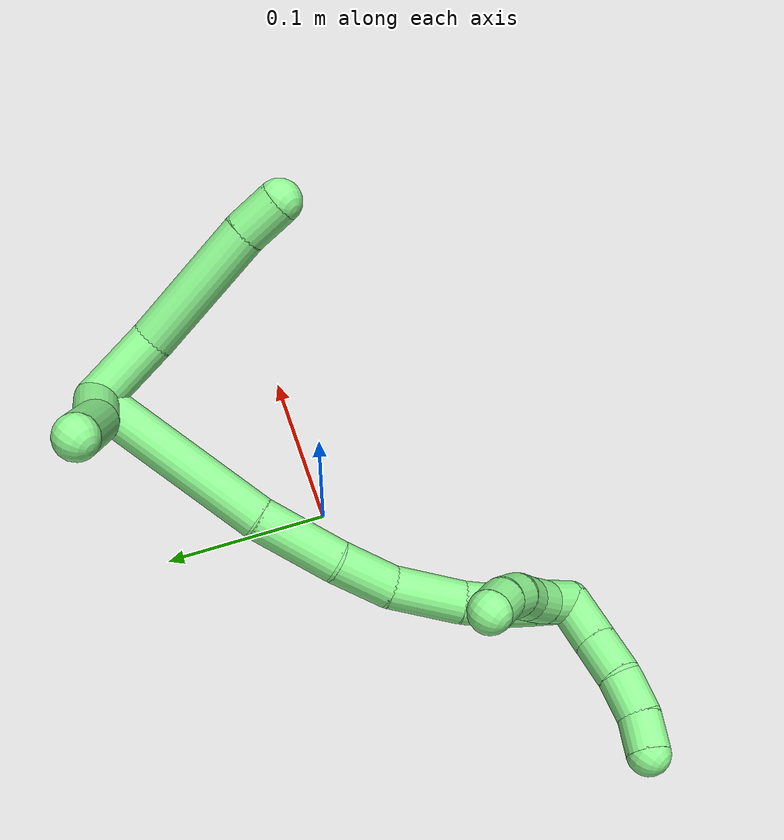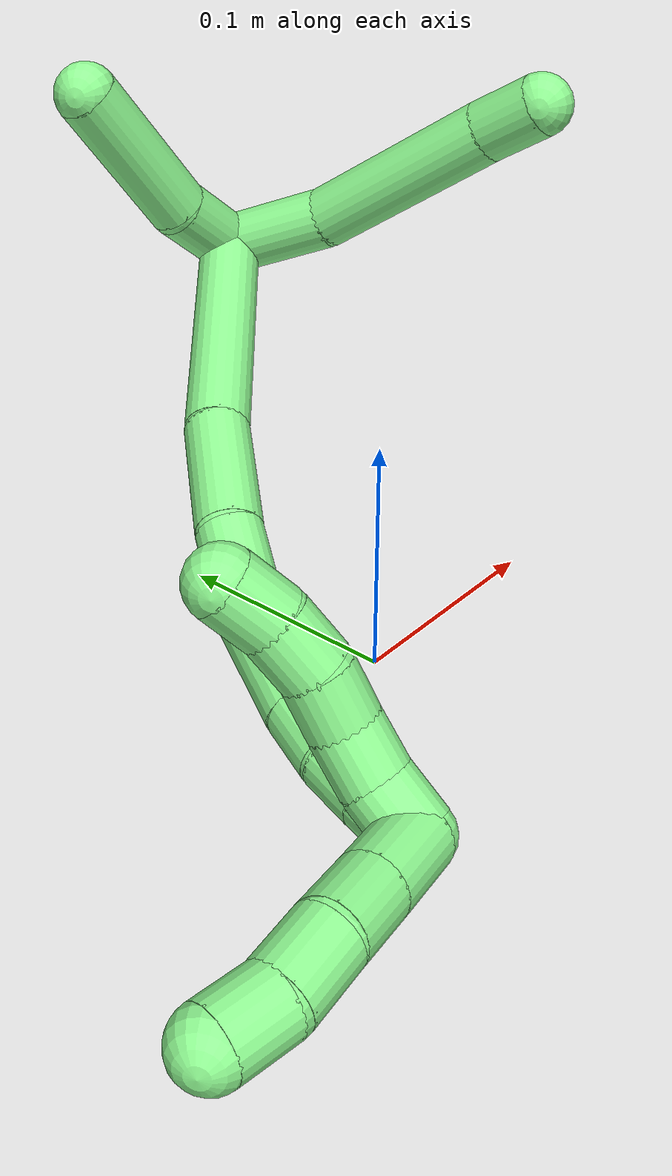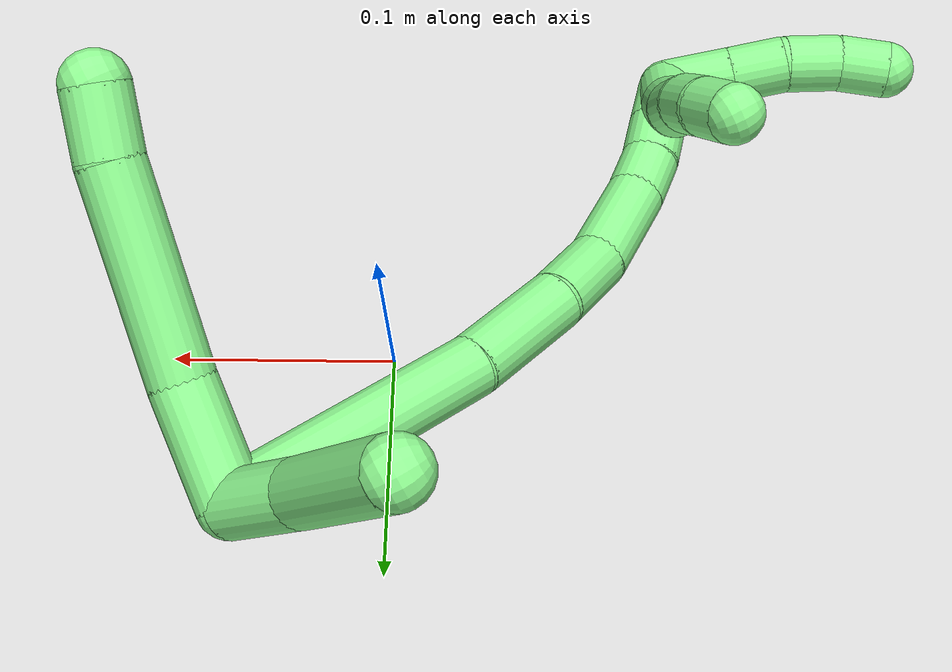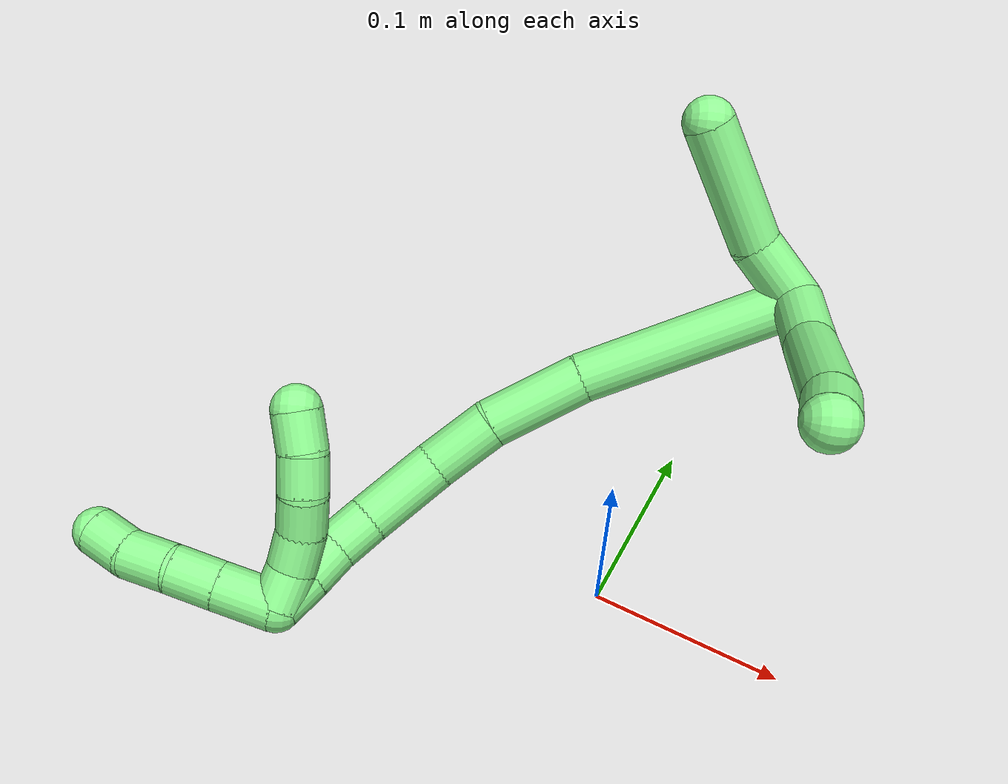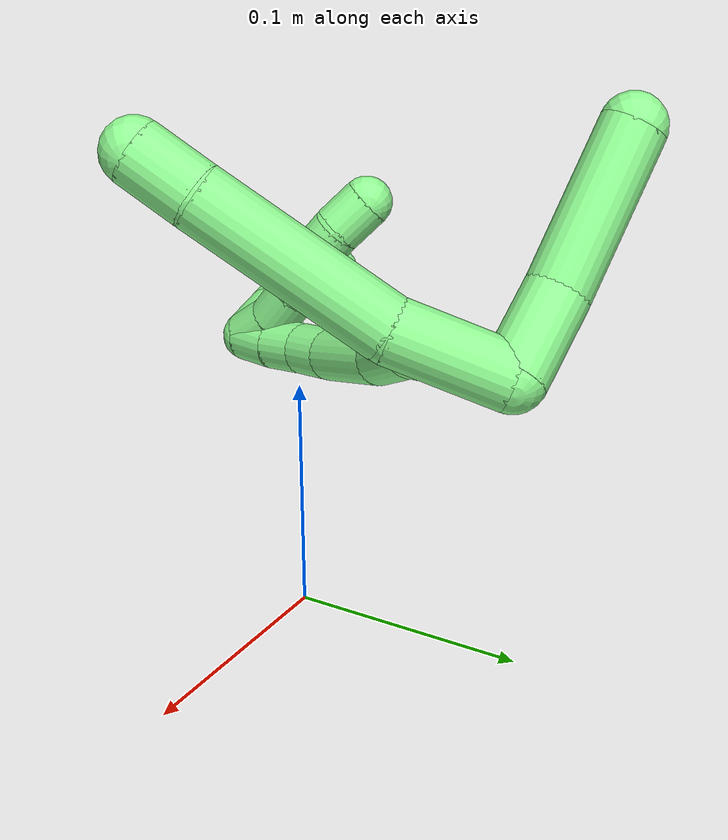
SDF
<sdf version="1.7">
 <world name="default">
  <model name="photoneo_s_sensor">
   <static>1</static>
   <pose>0 0 2 1.57079 1.57079 3.14159</pose>
   <link name="link">
    <inertial><mass>0.1</mass></inertial>
    <sensor name="sensor" type="depth">
     <update_rate>30</update_rate>
     <camera>
      <horizontal_fov>1.22</horizontal_fov>
      <image><width>1920</width><height>1200</height><format>B8G8R8</format></image>
      <clip><near>0.1</near><far>4</far></clip>
      <depth_camera><output>points</output></depth_camera>
     </camera>
     <plugin name="camera_plugin" filename="libgazebo_ros_depth_camera.so">
      <baseline>0.2</baseline>
      <alwaysOn>1</alwaysOn>
      <updateRate>0.0</updateRate>
      <cameraName>camera_ir</cameraName>
      <imageTopicName>/camera/color/image_raw</imageTopicName>
      <cameraInfoTopicName>/camera/color/camera_info</cameraInfoTopicName>
      <depthImageTopicName>/camera/depth/image_raw</depthImageTopicName>
      <depthImageCameraInfoTopicName>/camera/depth/camera_info</depthImageCameraInfoTopicName>
      <pointCloudTopicName>/camera/depth/points</pointCloudTopicName>
      <frameName>fr_optical</frameName>
      <pointCloudCutoff>0.1</pointCloudCutoff>
      <pointCloudCutoffMax>2.0</pointCloudCutoffMax>
      <distortionK1>0</distortionK1>
      <distortionK2>0</distortionK2>
      <distortionK3>0</distortionK3>
      <distortionT1>0</distortionT1>
      <distortionT2>0</distortionT2>
      <CxPrime>0</CxPrime>
      <Cx>0</Cx>
      <Cy>0</Cy>
      <focalLength>0</focalLength>
      <hackBaseline>0</hackBaseline>
     </plugin>
    </sensor>
   </link>
  </model>
  <model name="bin">
   <static>1</static>
   <link name="bottom">
    <collision name="collision-bottom">
     <pose>0 0 -0.01 0 -0 0</pose>
     <geometry><box><size>0.8 0.6 0.02</size></box></geometry>
     <surface>
      <friction><ode><mu>100</mu><mu2>100</mu2></ode></friction>
      <contact><collide_bitmask>65535</collide_bitmask></contact>
     </surface>
    </collision>
   </link>
   <link name="west_wall">
    <collision name="collision-west_wall">
     <pose>-0.41 0 0.1 0 -0 0</pose>
     <geometry><box><size>0.02 0.6 0.2</size></box></geometry>
     <surface>
      <friction><ode><mu>100</mu><mu2>100</mu2></ode></friction>
      <contact><collide_bitmask>65535</collide_bitmask></contact>
     </surface>
    </collision>
   </link>
   <link name="east_wall">
    <collision name="collision-east_wall">
     <pose>0.41 0 0.1 0 -0 0</pose>
     <geometry><box><size>0.02 0.6 0.2</size></box></geometry>
     <surface>
      <friction><ode><mu>100</mu><mu2>100</mu2></ode></friction>
      <contact><collide_bitmask>65535</collide_bitmask></contact>
     </surface>
    </collision>
   </link>
   <link name="south_wall">
    <collision name="collision-south_wall">
     <pose>0 -0.31 0.1 0 -0 0</pose>
     <geometry><box><size>0.8 0.02 0.2</size></box></geometry>
     <surface>
      <friction><ode><mu>100</mu><mu2>100</mu2></ode></friction>
      <contact><collide_bitmask>65535</collide_bitmask></contact>
     </surface>
    </collision>
   </link>
   <link name="north_wall">
    <collision name="collision-north_wall">
     <pose>0 0.31 0.1 0 -0 0</pose>
     <geometry><box><size>0.8 0.02 0.2</size></box></geometry>
     <surface>
      <friction><ode><mu>100</mu><mu2>100</mu2></ode></friction>
      <contact><collide_bitmask>65535</collide_bitmask></contact>
     </surface>
    </collision>
   </link>
  </model>
  <model name="13">
   <static>0</static>
   <link name="13">
    <collision name="collision-cylinder-e_1_2_8">
     <pose>0.016936 -0.014913 0.002444 1.40838 0.842269 0.727181</pose>
     <geometry><cylinder><radius>0.0125</radius><length>0.045395</length></cylinder></geometry>
     <surface>
      <friction><ode><mu>1.16</mu><mu2>1.16</mu2><slip1>0</slip1><slip2>0</slip2></ode></friction>
      <contact><ode><kp>1e+06</kp><kd>1</kd><max_vel>0</max_vel><min_depth>0.001</min_depth></ode></contact>
     </surface>
    </collision>
    <visual name="visual-cylinder-e_1_2_8">
     <pose>0.016936 -0.014913 0.002444 1.40838 0.842269 0.727181</pose>
     <geometry><cylinder><radius>0.0125</radius><length>0.045395</length></cylinder></geometry>
     <material><ambient>0.564706 0.984314 0.572549 1</ambient></material>
    </visual>
    <collision name="collision-cylinder-e_2_8_9">
     <pose>0.067708 -0.048656 0.012696 1.17769 1.02856 0.721659</pose>
     <geometry><cylinder><radius>0.0125</radius><length>0.079005</length></cylinder></geometry>
     <surface>
      <friction><ode><mu>1.16</mu><mu2>1.16</mu2><slip1>0</slip1><slip2>0</slip2></ode></friction>
      <contact><ode><kp>1e+06</kp><kd>1</kd><max_vel>0</max_vel><min_depth>0.001</min_depth></ode></contact>
     </surface>
    </collision>
    <visual name="visual-cylinder-e_2_8_9">
     <pose>0.067708 -0.048656 0.012696 1.17769 1.02856 0.721659</pose>
     <geometry><cylinder><radius>0.0125</radius><length>0.079005</length></cylinder></geometry>
     <material><ambient>0.564706 0.984314 0.572549 1</ambient></material>
    </visual>
    <collision name="collision-cylinder-e_3_9_6">
     <pose>0.111951 -0.073788 0.024482 1.00781 0.949381 0.552218</pose>
     <geometry><cylinder><radius>0.0125</radius><length>0.0256</length></cylinder></geometry>
     <surface>
      <friction><ode><mu>1.16</mu><mu2>1.16</mu2><slip1>0</slip1><slip2>0</slip2></ode></friction>
      <contact><ode><kp>1e+06</kp><kd>1</kd><max_vel>0</max_vel><min_depth>0.001</min_depth></ode></contact>
     </surface>
    </collision>
    <visual name="visual-cylinder-e_3_9_6">
     <pose>0.111951 -0.073788 0.024482 1.00781 0.949381 0.552218</pose>
     <geometry><cylinder><radius>0.0125</radius><length>0.0256</length></cylinder></geometry>
     <material><ambient>0.564706 0.984314 0.572549 1</ambient></material>
    </visual>
    <collision name="collision-cylinder-e_1_2_10">
     <pose>0.005107 0.011577 0.012735 -0.737807 0.288449 -0.112177</pose>
     <geometry><cylinder><radius>0.0125</radius><length>0.035905</length></cylinder></geometry>
     <surface>
      <friction><ode><mu>1.16</mu><mu2>1.16</mu2><slip1>0</slip1><slip2>0</slip2></ode></friction>
      <contact><ode><kp>1e+06</kp><kd>1</kd><max_vel>0</max_vel><min_depth>0.001</min_depth></ode></contact>
     </surface>
    </collision>
    <visual name="visual-cylinder-e_1_2_10">
     <pose>0.005107 0.011577 0.012735 -0.737807 0.288449 -0.112177</pose>
     <geometry><cylinder><radius>0.0125</radius><length>0.035905</length></cylinder></geometry>
     <material><ambient>0.564706 0.984314 0.572549 1</ambient></material>
    </visual>
    <collision name="collision-cylinder-e_2_10_5">
     <pose>0.025207 0.04594 0.042294 -0.934785 0.486839 -0.249373</pose>
     <geometry><cylinder><radius>0.0125</radius><length>0.064095</length></cylinder></geometry>
     <surface>
      <friction><ode><mu>1.16</mu><mu2>1.16</mu2><slip1>0</slip1><slip2>0</slip2></ode></friction>
      <contact><ode><kp>1e+06</kp><kd>1</kd><max_vel>0</max_vel><min_depth>0.001</min_depth></ode></contact>
     </surface>
    </collision>
    <visual name="visual-cylinder-e_2_10_5">
     <pose>0.025207 0.04594 0.042294 -0.934785 0.486839 -0.249373</pose>
     <geometry><cylinder><radius>0.0125</radius><length>0.064095</length></cylinder></geometry>
     <material><ambient>0.564706 0.984314 0.572549 1</ambient></material>
    </visual>
    <collision name="collision-cylinder-e_1_2_11">
     <pose>-0.016143 -0.020857 0.048459 0.406443 -0.296946 -0.061625</pose>
     <geometry><cylinder><radius>0.0125</radius><length>0.110343</length></cylinder></geometry>
     <surface>
      <friction><ode><mu>1.16</mu><mu2>1.16</mu2><slip1>0</slip1><slip2>0</slip2></ode></friction>
      <contact><ode><kp>1e+06</kp><kd>1</kd><max_vel>0</max_vel><min_depth>0.001</min_depth></ode></contact>
     </surface>
    </collision>
    <visual name="visual-cylinder-e_1_2_11">
     <pose>-0.016143 -0.020857 0.048459 0.406443 -0.296946 -0.061625</pose>
     <geometry><cylinder><radius>0.0125</radius><length>0.110343</length></cylinder></geometry>
     <material><ambient>0.564706 0.984314 0.572549 1</ambient></material>
    </visual>
    <collision name="collision-cylinder-e_2_11_12">
     <pose>-0.038218 -0.054145 0.117736 0.538296 -0.239921 -0.066475</pose>
     <geometry><cylinder><radius>0.0125</radius><length>0.049925</length></cylinder></geometry>
     <surface>
      <friction><ode><mu>1.16</mu><mu2>1.16</mu2><slip1>0</slip1><slip2>0</slip2></ode></friction>
      <contact><ode><kp>1e+06</kp><kd>1</kd><max_vel>0</max_vel><min_depth>0.001</min_depth></ode></contact>
     </surface>
    </collision>
    <visual name="visual-cylinder-e_2_11_12">
     <pose>-0.038218 -0.054145 0.117736 0.538296 -0.239921 -0.066475</pose>
     <geometry><cylinder><radius>0.0125</radius><length>0.049925</length></cylinder></geometry>
     <material><ambient>0.564706 0.984314 0.572549 1</ambient></material>
    </visual>
    <collision name="collision-cylinder-e_3_12_13">
     <pose>-0.049162 -0.077542 0.151052 0.720218 -0.292805 -0.11093</pose>
     <geometry><cylinder><radius>0.0125</radius><length>0.034731</length></cylinder></geometry>
     <surface>
      <friction><ode><mu>1.16</mu><mu2>1.16</mu2><slip1>0</slip1><slip2>0</slip2></ode></friction>
      <contact><ode><kp>1e+06</kp><kd>1</kd><max_vel>0</max_vel><min_depth>0.001</min_depth></ode></contact>
     </surface>
    </collision>
    <visual name="visual-cylinder-e_3_12_13">
     <pose>-0.049162 -0.077542 0.151052 0.720218 -0.292805 -0.11093</pose>
     <geometry><cylinder><radius>0.0125</radius><length>0.034731</length></cylinder></geometry>
     <material><ambient>0.564706 0.984314 0.572549 1</ambient></material>
    </visual>
    <collision name="collision-cylinder-e_4_13_14">
     <pose>-0.055388 -0.103323 0.178904 0.767509 -0.056793 -0.022937</pose>
     <geometry><cylinder><radius>0.0125</radius><length>0.042742</length></cylinder></geometry>
     <surface>
      <friction><ode><mu>1.16</mu><mu2>1.16</mu2><slip1>0</slip1><slip2>0</slip2></ode></friction>
      <contact><ode><kp>1e+06</kp><kd>1</kd><max_vel>0</max_vel><min_depth>0.001</min_depth></ode></contact>
     </surface>
    </collision>
    <visual name="visual-cylinder-e_4_13_14">
     <pose>-0.055388 -0.103323 0.178904 0.767509 -0.056793 -0.022937</pose>
     <geometry><cylinder><radius>0.0125</radius><length>0.042742</length></cylinder></geometry>
     <material><ambient>0.564706 0.984314 0.572549 1</ambient></material>
    </visual>
    <collision name="collision-cylinder-e_5_14_15">
     <pose>-0.055796 -0.125756 0.201806 0.790117 0.074923 0.031253</pose>
     <geometry><cylinder><radius>0.0125</radius><length>0.021507</length></cylinder></geometry>
     <surface>
      <friction><ode><mu>1.16</mu><mu2>1.16</mu2><slip1>0</slip1><slip2>0</slip2></ode></friction>
      <contact><ode><kp>1e+06</kp><kd>1</kd><max_vel>0</max_vel><min_depth>0.001</min_depth></ode></contact>
     </surface>
    </collision>
    <visual name="visual-cylinder-e_5_14_15">
     <pose>-0.055796 -0.125756 0.201806 0.790117 0.074923 0.031253</pose>
     <geometry><cylinder><radius>0.0125</radius><length>0.021507</length></cylinder></geometry>
     <material><ambient>0.564706 0.984314 0.572549 1</ambient></material>
    </visual>
    <collision name="collision-cylinder-e_6_15_16">
     <pose>-0.05336 -0.141239 0.215503 0.907106 0.161885 0.079042</pose>
     <geometry><cylinder><radius>0.0125</radius><length>0.020233</length></cylinder></geometry>
     <surface>
      <friction><ode><mu>1.16</mu><mu2>1.16</mu2><slip1>0</slip1><slip2>0</slip2></ode></friction>
      <contact><ode><kp>1e+06</kp><kd>1</kd><max_vel>0</max_vel><min_depth>0.001</min_depth></ode></contact>
     </surface>
    </collision>
    <visual name="visual-cylinder-e_6_15_16">
     <pose>-0.05336 -0.141239 0.215503 0.907106 0.161885 0.079042</pose>
     <geometry><cylinder><radius>0.0125</radius><length>0.020233</length></cylinder></geometry>
     <material><ambient>0.564706 0.984314 0.572549 1</ambient></material>
    </visual>
    <collision name="collision-cylinder-e_7_16_1">
     <pose>-0.049233 -0.156593 0.228206 0.852009 0.245861 0.112018</pose>
     <geometry><cylinder><radius>0.0125</radius><length>0.020519</length></cylinder></geometry>
     <surface>
      <friction><ode><mu>1.16</mu><mu2>1.16</mu2><slip1>0</slip1><slip2>0</slip2></ode></friction>
      <contact><ode><kp>1e+06</kp><kd>1</kd><max_vel>0</max_vel><min_depth>0.001</min_depth></ode></contact>
     </surface>
    </collision>
    <visual name="visual-cylinder-e_7_16_1">
     <pose>-0.049233 -0.156593 0.228206 0.852009 0.245861 0.112018</pose>
     <geometry><cylinder><radius>0.0125</radius><length>0.020519</length></cylinder></geometry>
     <material><ambient>0.564706 0.984314 0.572549 1</ambient></material>
    </visual>
    <collision name="collision-cylinder-e_1_1_17">
     <pose>-0.044393 -0.154779 0.231939 -1.86504 0.236432 -0.317498</pose>
     <geometry><cylinder><radius>0.0125</radius><length>0.02</length></cylinder></geometry>
     <surface>
      <friction><ode><mu>1.16</mu><mu2>1.16</mu2><slip1>0</slip1><slip2>0</slip2></ode></friction>
      <contact><ode><kp>1e+06</kp><kd>1</kd><max_vel>0</max_vel><min_depth>0.001</min_depth></ode></contact>
     </surface>
    </collision>
    <visual name="visual-cylinder-e_1_1_17">
     <pose>-0.044393 -0.154779 0.231939 -1.86504 0.236432 -0.317498</pose>
     <geometry><cylinder><radius>0.0125</radius><length>0.02</length></cylinder></geometry>
     <material><ambient>0.564706 0.984314 0.572549 1</ambient></material>
    </visual>
    <collision name="collision-cylinder-e_2_17_18">
     <pose>-0.03745 -0.136719 0.227648 -1.73728 0.478121 -0.560994</pose>
     <geometry><cylinder><radius>0.0125</radius><length>0.02</length></cylinder></geometry>
     <surface>
      <friction><ode><mu>1.16</mu><mu2>1.16</mu2><slip1>0</slip1><slip2>0</slip2></ode></friction>
      <contact><ode><kp>1e+06</kp><kd>1</kd><max_vel>0</max_vel><min_depth>0.001</min_depth></ode></contact>
     </surface>
    </collision>
    <visual name="visual-cylinder-e_2_17_18">
     <pose>-0.03745 -0.136719 0.227648 -1.73728 0.478121 -0.560994</pose>
     <geometry><cylinder><radius>0.0125</radius><length>0.02</length></cylinder></geometry>
     <material><ambient>0.564706 0.984314 0.572549 1</ambient></material>
    </visual>
    <collision name="collision-cylinder-e_3_18_19">
     <pose>-0.027133 -0.119772 0.226671 -1.51052 0.608461 -0.574832</pose>
     <geometry><cylinder><radius>0.0125</radius><length>0.02</length></cylinder></geometry>
     <surface>
      <friction><ode><mu>1.16</mu><mu2>1.16</mu2><slip1>0</slip1><slip2>0</slip2></ode></friction>
      <contact><ode><kp>1e+06</kp><kd>1</kd><max_vel>0</max_vel><min_depth>0.001</min_depth></ode></contact>
     </surface>
    </collision>
    <visual name="visual-cylinder-e_3_18_19">
     <pose>-0.027133 -0.119772 0.226671 -1.51052 0.608461 -0.574832</pose>
     <geometry><cylinder><radius>0.0125</radius><length>0.02</length></cylinder></geometry>
     <material><ambient>0.564706 0.984314 0.572549 1</ambient></material>
    </visual>
    <collision name="collision-cylinder-e_4_19_20">
     <pose>-0.017712 -0.102344 0.228135 -1.4662 0.379535 -0.342551</pose>
     <geometry><cylinder><radius>0.0125</radius><length>0.02</length></cylinder></geometry>
     <surface>
      <friction><ode><mu>1.16</mu><mu2>1.16</mu2><slip1>0</slip1><slip2>0</slip2></ode></friction>
      <contact><ode><kp>1e+06</kp><kd>1</kd><max_vel>0</max_vel><min_depth>0.001</min_depth></ode></contact>
     </surface>
    </collision>
    <visual name="visual-cylinder-e_4_19_20">
     <pose>-0.017712 -0.102344 0.228135 -1.4662 0.379535 -0.342551</pose>
     <geometry><cylinder><radius>0.0125</radius><length>0.02</length></cylinder></geometry>
     <material><ambient>0.564706 0.984314 0.572549 1</ambient></material>
    </visual>
    <collision name="collision-cylinder-e_5_20_4">
     <pose>-0.011773 -0.083661 0.231509 -1.32159 0.225312 -0.175446</pose>
     <geometry><cylinder><radius>0.0125</radius><length>0.02</length></cylinder></geometry>
     <surface>
      <friction><ode><mu>1.16</mu><mu2>1.16</mu2><slip1>0</slip1><slip2>0</slip2></ode></friction>
      <contact><ode><kp>1e+06</kp><kd>1</kd><max_vel>0</max_vel><min_depth>0.001</min_depth></ode></contact>
     </surface>
    </collision>
    <visual name="visual-cylinder-e_5_20_4">
     <pose>-0.011773 -0.083661 0.231509 -1.32159 0.225312 -0.175446</pose>
     <geometry><cylinder><radius>0.0125</radius><length>0.02</length></cylinder></geometry>
     <material><ambient>0.564706 0.984314 0.572549 1</ambient></material>
    </visual>
    <collision name="collision-cylinder-e_1_1_21">
     <pose>-0.049192 -0.160287 0.248727 -0.265285 -0.168096 0.02248</pose>
     <geometry><cylinder><radius>0.0125</radius><length>0.029364</length></cylinder></geometry>
     <surface>
      <friction><ode><mu>1.16</mu><mu2>1.16</mu2><slip1>0</slip1><slip2>0</slip2></ode></friction>
      <contact><ode><kp>1e+06</kp><kd>1</kd><max_vel>0</max_vel><min_depth>0.001</min_depth></ode></contact>
     </surface>
    </collision>
    <visual name="visual-cylinder-e_1_1_21">
     <pose>-0.049192 -0.160287 0.248727 -0.265285 -0.168096 0.02248</pose>
     <geometry><cylinder><radius>0.0125</radius><length>0.029364</length></cylinder></geometry>
     <material><ambient>0.564706 0.984314 0.572549 1</ambient></material>
    </visual>
    <collision name="collision-cylinder-e_2_21_22">
     <pose>-0.053539 -0.153212 0.274298 -0.275574 -0.155556 0.021613</pose>
     <geometry><cylinder><radius>0.0125</radius><length>0.024409</length></cylinder></geometry>
     <surface>
      <friction><ode><mu>1.16</mu><mu2>1.16</mu2><slip1>0</slip1><slip2>0</slip2></ode></friction>
      <contact><ode><kp>1e+06</kp><kd>1</kd><max_vel>0</max_vel><min_depth>0.001</min_depth></ode></contact>
     </surface>
    </collision>
    <visual name="visual-cylinder-e_2_21_22">
     <pose>-0.053539 -0.153212 0.274298 -0.275574 -0.155556 0.021613</pose>
     <geometry><cylinder><radius>0.0125</radius><length>0.024409</length></cylinder></geometry>
     <material><ambient>0.564706 0.984314 0.572549 1</ambient></material>
    </visual>
    <collision name="collision-cylinder-e_3_22_23">
     <pose>-0.059901 -0.14699 0.296923 -0.260728 -0.373477 0.049533</pose>
     <geometry><cylinder><radius>0.0125</radius><length>0.024508</length></cylinder></geometry>
     <surface>
      <friction><ode><mu>1.16</mu><mu2>1.16</mu2><slip1>0</slip1><slip2>0</slip2></ode></friction>
      <contact><ode><kp>1e+06</kp><kd>1</kd><max_vel>0</max_vel><min_depth>0.001</min_depth></ode></contact>
     </surface>
    </collision>
    <visual name="visual-cylinder-e_3_22_23">
     <pose>-0.059901 -0.14699 0.296923 -0.260728 -0.373477 0.049533</pose>
     <geometry><cylinder><radius>0.0125</radius><length>0.024508</length></cylinder></geometry>
     <material><ambient>0.564706 0.984314 0.572549 1</ambient></material>
    </visual>
    <collision name="collision-cylinder-e_4_23_3">
     <pose>-0.068684 -0.139058 0.316575 -0.524403 -0.408347 0.111027</pose>
     <geometry><cylinder><radius>0.0125</radius><length>0.02172</length></cylinder></geometry>
     <surface>
      <friction><ode><mu>1.16</mu><mu2>1.16</mu2><slip1>0</slip1><slip2>0</slip2></ode></friction>
      <contact><ode><kp>1e+06</kp><kd>1</kd><max_vel>0</max_vel><min_depth>0.001</min_depth></ode></contact>
     </surface>
    </collision>
    <visual name="visual-cylinder-e_4_23_3">
     <pose>-0.068684 -0.139058 0.316575 -0.524403 -0.408347 0.111027</pose>
     <geometry><cylinder><radius>0.0125</radius><length>0.02172</length></cylinder></geometry>
     <material><ambient>0.564706 0.984314 0.572549 1</ambient></material>
    </visual>
    <collision name="collision-sphere-3">
     <pose>-0.072996 -0.134068 0.325202 0 -0 0</pose>
     <geometry><sphere><radius>0.0125</radius></sphere></geometry>
     <surface>
      <friction><ode><mu>1.16</mu><mu2>1.16</mu2><slip1>0</slip1><slip2>0</slip2></ode></friction>
      <contact><ode><kp>1e+06</kp><kd>1</kd><max_vel>0</max_vel><min_depth>0.001</min_depth></ode></contact>
     </surface>
    </collision>
    <visual name="visual-sphere-3">
     <pose>-0.072996 -0.134068 0.325202 0 -0 0</pose>
     <geometry><sphere><radius>0.0125</radius></sphere></geometry>
     <material><ambient>0.564706 0.984314 0.572549 1</ambient></material>
    </visual>
    <collision name="collision-sphere-23">
     <pose>-0.064372 -0.144049 0.307947 0 -0 0</pose>
     <geometry><sphere><radius>0.0125</radius></sphere></geometry>
     <surface>
      <friction><ode><mu>1.16</mu><mu2>1.16</mu2><slip1>0</slip1><slip2>0</slip2></ode></friction>
      <contact><ode><kp>1e+06</kp><kd>1</kd><max_vel>0</max_vel><min_depth>0.001</min_depth></ode></contact>
     </surface>
    </collision>
    <visual name="visual-sphere-23">
     <pose>-0.064372 -0.144049 0.307947 0 -0 0</pose>
     <geometry><sphere><radius>0.0125</radius></sphere></geometry>
     <material><ambient>0.564706 0.984314 0.572549 1</ambient></material>
    </visual>
    <collision name="collision-sphere-22">
     <pose>-0.05543 -0.149931 0.2859 0 -0 0</pose>
     <geometry><sphere><radius>0.0125</radius></sphere></geometry>
     <surface>
      <friction><ode><mu>1.16</mu><mu2>1.16</mu2><slip1>0</slip1><slip2>0</slip2></ode></friction>
      <contact><ode><kp>1e+06</kp><kd>1</kd><max_vel>0</max_vel><min_depth>0.001</min_depth></ode></contact>
     </surface>
    </collision>
    <visual name="visual-sphere-22">
     <pose>-0.05543 -0.149931 0.2859 0 -0 0</pose>
     <geometry><sphere><radius>0.0125</radius></sphere></geometry>
     <material><ambient>0.564706 0.984314 0.572549 1</ambient></material>
    </visual>
    <collision name="collision-sphere-21">
     <pose>-0.051648 -0.156492 0.262696 0 -0 0</pose>
     <geometry><sphere><radius>0.0125</radius></sphere></geometry>
     <surface>
      <friction><ode><mu>1.16</mu><mu2>1.16</mu2><slip1>0</slip1><slip2>0</slip2></ode></friction>
      <contact><ode><kp>1e+06</kp><kd>1</kd><max_vel>0</max_vel><min_depth>0.001</min_depth></ode></contact>
     </surface>
    </collision>
    <visual name="visual-sphere-21">
     <pose>-0.051648 -0.156492 0.262696 0 -0 0</pose>
     <geometry><sphere><radius>0.0125</radius></sphere></geometry>
     <material><ambient>0.564706 0.984314 0.572549 1</ambient></material>
    </visual>
    <collision name="collision-sphere-4">
     <pose>-0.009539 -0.074215 0.233913 0 -0 0</pose>
     <geometry><sphere><radius>0.0125</radius></sphere></geometry>
     <surface>
      <friction><ode><mu>1.16</mu><mu2>1.16</mu2><slip1>0</slip1><slip2>0</slip2></ode></friction>
      <contact><ode><kp>1e+06</kp><kd>1</kd><max_vel>0</max_vel><min_depth>0.001</min_depth></ode></contact>
     </surface>
    </collision>
    <visual name="visual-sphere-4">
     <pose>-0.009539 -0.074215 0.233913 0 -0 0</pose>
     <geometry><sphere><radius>0.0125</radius></sphere></geometry>
     <material><ambient>0.564706 0.984314 0.572549 1</ambient></material>
    </visual>
    <collision name="collision-sphere-20">
     <pose>-0.014007 -0.093107 0.229105 0 -0 0</pose>
     <geometry><sphere><radius>0.0125</radius></sphere></geometry>
     <surface>
      <friction><ode><mu>1.16</mu><mu2>1.16</mu2><slip1>0</slip1><slip2>0</slip2></ode></friction>
      <contact><ode><kp>1e+06</kp><kd>1</kd><max_vel>0</max_vel><min_depth>0.001</min_depth></ode></contact>
     </surface>
    </collision>
    <visual name="visual-sphere-20">
     <pose>-0.014007 -0.093107 0.229105 0 -0 0</pose>
     <geometry><sphere><radius>0.0125</radius></sphere></geometry>
     <material><ambient>0.564706 0.984314 0.572549 1</ambient></material>
    </visual>
    <collision name="collision-sphere-5">
     <pose>0.0402 0.068726 0.059119 0 -0 0</pose>
     <geometry><sphere><radius>0.0125</radius></sphere></geometry>
     <surface>
      <friction><ode><mu>1.16</mu><mu2>1.16</mu2><slip1>0</slip1><slip2>0</slip2></ode></friction>
      <contact><ode><kp>1e+06</kp><kd>1</kd><max_vel>0</max_vel><min_depth>0.001</min_depth></ode></contact>
     </surface>
    </collision>
    <visual name="visual-sphere-5">
     <pose>0.0402 0.068726 0.059119 0 -0 0</pose>
     <geometry><sphere><radius>0.0125</radius></sphere></geometry>
     <material><ambient>0.564706 0.984314 0.572549 1</ambient></material>
    </visual>
    <collision name="collision-sphere-10">
     <pose>0.010214 0.023154 0.02547 0 -0 0</pose>
     <geometry><sphere><radius>0.0125</radius></sphere></geometry>
     <surface>
      <friction><ode><mu>1.16</mu><mu2>1.16</mu2><slip1>0</slip1><slip2>0</slip2></ode></friction>
      <contact><ode><kp>1e+06</kp><kd>1</kd><max_vel>0</max_vel><min_depth>0.001</min_depth></ode></contact>
     </surface>
    </collision>
    <visual name="visual-sphere-10">
     <pose>0.010214 0.023154 0.02547 0 -0 0</pose>
     <geometry><sphere><radius>0.0125</radius></sphere></geometry>
     <material><ambient>0.564706 0.984314 0.572549 1</ambient></material>
    </visual>
    <collision name="collision-sphere-6">
     <pose>0.122358 -0.08009 0.028459 0 -0 0</pose>
     <geometry><sphere><radius>0.0125</radius></sphere></geometry>
     <surface>
      <friction><ode><mu>1.16</mu><mu2>1.16</mu2><slip1>0</slip1><slip2>0</slip2></ode></friction>
      <contact><ode><kp>1e+06</kp><kd>1</kd><max_vel>0</max_vel><min_depth>0.001</min_depth></ode></contact>
     </surface>
    </collision>
    <visual name="visual-sphere-6">
     <pose>0.122358 -0.08009 0.028459 0 -0 0</pose>
     <geometry><sphere><radius>0.0125</radius></sphere></geometry>
     <material><ambient>0.564706 0.984314 0.572549 1</ambient></material>
    </visual>
    <collision name="collision-sphere-9">
     <pose>0.101544 -0.067486 0.020505 0 -0 0</pose>
     <geometry><sphere><radius>0.0125</radius></sphere></geometry>
     <surface>
      <friction><ode><mu>1.16</mu><mu2>1.16</mu2><slip1>0</slip1><slip2>0</slip2></ode></friction>
      <contact><ode><kp>1e+06</kp><kd>1</kd><max_vel>0</max_vel><min_depth>0.001</min_depth></ode></contact>
     </surface>
    </collision>
    <visual name="visual-sphere-9">
     <pose>0.101544 -0.067486 0.020505 0 -0 0</pose>
     <geometry><sphere><radius>0.0125</radius></sphere></geometry>
     <material><ambient>0.564706 0.984314 0.572549 1</ambient></material>
    </visual>
    <collision name="collision-sphere-2">
     <geometry><sphere><radius>0.0125</radius></sphere></geometry>
     <surface>
      <friction><ode><mu>1.16</mu><mu2>1.16</mu2><slip1>0</slip1><slip2>0</slip2></ode></friction>
      <contact><ode><kp>1e+06</kp><kd>1</kd><max_vel>0</max_vel><min_depth>0.001</min_depth></ode></contact>
     </surface>
    </collision>
    <visual name="visual-sphere-2">
     <geometry><sphere><radius>0.0125</radius></sphere></geometry>
     <material><ambient>0.564706 0.984314 0.572549 1</ambient></material>
    </visual>
    <collision name="collision-sphere-19">
     <pose>-0.021416 -0.111582 0.227165 0 -0 0</pose>
     <geometry><sphere><radius>0.0125</radius></sphere></geometry>
     <surface>
      <friction><ode><mu>1.16</mu><mu2>1.16</mu2><slip1>0</slip1><slip2>0</slip2></ode></friction>
      <contact><ode><kp>1e+06</kp><kd>1</kd><max_vel>0</max_vel><min_depth>0.001</min_depth></ode></contact>
     </surface>
    </collision>
    <visual name="visual-sphere-19">
     <pose>-0.021416 -0.111582 0.227165 0 -0 0</pose>
     <geometry><sphere><radius>0.0125</radius></sphere></geometry>
     <material><ambient>0.564706 0.984314 0.572549 1</ambient></material>
    </visual>
    <collision name="collision-sphere-8">
     <pose>0.033872 -0.029825 0.004887 0 -0 0</pose>
     <geometry><sphere><radius>0.0125</radius></sphere></geometry>
     <surface>
      <friction><ode><mu>1.16</mu><mu2>1.16</mu2><slip1>0</slip1><slip2>0</slip2></ode></friction>
      <contact><ode><kp>1e+06</kp><kd>1</kd><max_vel>0</max_vel><min_depth>0.001</min_depth></ode></contact>
     </surface>
    </collision>
    <visual name="visual-sphere-8">
     <pose>0.033872 -0.029825 0.004887 0 -0 0</pose>
     <geometry><sphere><radius>0.0125</radius></sphere></geometry>
     <material><ambient>0.564706 0.984314 0.572549 1</ambient></material>
    </visual>
    <collision name="collision-sphere-11">
     <pose>-0.032286 -0.041714 0.096918 0 -0 0</pose>
     <geometry><sphere><radius>0.0125</radius></sphere></geometry>
     <surface>
      <friction><ode><mu>1.16</mu><mu2>1.16</mu2><slip1>0</slip1><slip2>0</slip2></ode></friction>
      <contact><ode><kp>1e+06</kp><kd>1</kd><max_vel>0</max_vel><min_depth>0.001</min_depth></ode></contact>
     </surface>
    </collision>
    <visual name="visual-sphere-11">
     <pose>-0.032286 -0.041714 0.096918 0 -0 0</pose>
     <geometry><sphere><radius>0.0125</radius></sphere></geometry>
     <material><ambient>0.564706 0.984314 0.572549 1</ambient></material>
    </visual>
    <collision name="collision-sphere-12">
     <pose>-0.04415 -0.066576 0.138555 0 -0 0</pose>
     <geometry><sphere><radius>0.0125</radius></sphere></geometry>
     <surface>
      <friction><ode><mu>1.16</mu><mu2>1.16</mu2><slip1>0</slip1><slip2>0</slip2></ode></friction>
      <contact><ode><kp>1e+06</kp><kd>1</kd><max_vel>0</max_vel><min_depth>0.001</min_depth></ode></contact>
     </surface>
    </collision>
    <visual name="visual-sphere-12">
     <pose>-0.04415 -0.066576 0.138555 0 -0 0</pose>
     <geometry><sphere><radius>0.0125</radius></sphere></geometry>
     <material><ambient>0.564706 0.984314 0.572549 1</ambient></material>
    </visual>
    <collision name="collision-sphere-13">
     <pose>-0.054175 -0.088508 0.163549 0 -0 0</pose>
     <geometry><sphere><radius>0.0125</radius></sphere></geometry>
     <surface>
      <friction><ode><mu>1.16</mu><mu2>1.16</mu2><slip1>0</slip1><slip2>0</slip2></ode></friction>
      <contact><ode><kp>1e+06</kp><kd>1</kd><max_vel>0</max_vel><min_depth>0.001</min_depth></ode></contact>
     </surface>
    </collision>
    <visual name="visual-sphere-13">
     <pose>-0.054175 -0.088508 0.163549 0 -0 0</pose>
     <geometry><sphere><radius>0.0125</radius></sphere></geometry>
     <material><ambient>0.564706 0.984314 0.572549 1</ambient></material>
    </visual>
    <collision name="collision-sphere-14">
     <pose>-0.056601 -0.118138 0.194259 0 -0 0</pose>
     <geometry><sphere><radius>0.0125</radius></sphere></geometry>
     <surface>
      <friction><ode><mu>1.16</mu><mu2>1.16</mu2><slip1>0</slip1><slip2>0</slip2></ode></friction>
      <contact><ode><kp>1e+06</kp><kd>1</kd><max_vel>0</max_vel><min_depth>0.001</min_depth></ode></contact>
     </surface>
    </collision>
    <visual name="visual-sphere-14">
     <pose>-0.056601 -0.118138 0.194259 0 -0 0</pose>
     <geometry><sphere><radius>0.0125</radius></sphere></geometry>
     <material><ambient>0.564706 0.984314 0.572549 1</ambient></material>
    </visual>
    <collision name="collision-sphere-15">
     <pose>-0.054991 -0.133375 0.209353 0 -0 0</pose>
     <geometry><sphere><radius>0.0125</radius></sphere></geometry>
     <surface>
      <friction><ode><mu>1.16</mu><mu2>1.16</mu2><slip1>0</slip1><slip2>0</slip2></ode></friction>
      <contact><ode><kp>1e+06</kp><kd>1</kd><max_vel>0</max_vel><min_depth>0.001</min_depth></ode></contact>
     </surface>
    </collision>
    <visual name="visual-sphere-15">
     <pose>-0.054991 -0.133375 0.209353 0 -0 0</pose>
     <geometry><sphere><radius>0.0125</radius></sphere></geometry>
     <material><ambient>0.564706 0.984314 0.572549 1</ambient></material>
    </visual>
    <collision name="collision-sphere-16">
     <pose>-0.05173 -0.149104 0.221654 0 -0 0</pose>
     <geometry><sphere><radius>0.0125</radius></sphere></geometry>
     <surface>
      <friction><ode><mu>1.16</mu><mu2>1.16</mu2><slip1>0</slip1><slip2>0</slip2></ode></friction>
      <contact><ode><kp>1e+06</kp><kd>1</kd><max_vel>0</max_vel><min_depth>0.001</min_depth></ode></contact>
     </surface>
    </collision>
    <visual name="visual-sphere-16">
     <pose>-0.05173 -0.149104 0.221654 0 -0 0</pose>
     <geometry><sphere><radius>0.0125</radius></sphere></geometry>
     <material><ambient>0.564706 0.984314 0.572549 1</ambient></material>
    </visual>
    <collision name="collision-sphere-1">
     <pose>-0.046736 -0.164082 0.234758 0 -0 0</pose>
     <geometry><sphere><radius>0.0125</radius></sphere></geometry>
     <surface>
      <friction><ode><mu>1.16</mu><mu2>1.16</mu2><slip1>0</slip1><slip2>0</slip2></ode></friction>
      <contact><ode><kp>1e+06</kp><kd>1</kd><max_vel>0</max_vel><min_depth>0.001</min_depth></ode></contact>
     </surface>
    </collision>
    <visual name="visual-sphere-1">
     <pose>-0.046736 -0.164082 0.234758 0 -0 0</pose>
     <geometry><sphere><radius>0.0125</radius></sphere></geometry>
     <material><ambient>0.564706 0.984314 0.572549 1</ambient></material>
    </visual>
    <collision name="collision-sphere-18">
     <pose>-0.032849 -0.127963 0.226177 0 -0 0</pose>
     <geometry><sphere><radius>0.0125</radius></sphere></geometry>
     <surface>
      <friction><ode><mu>1.16</mu><mu2>1.16</mu2><slip1>0</slip1><slip2>0</slip2></ode></friction>
      <contact><ode><kp>1e+06</kp><kd>1</kd><max_vel>0</max_vel><min_depth>0.001</min_depth></ode></contact>
     </surface>
    </collision>
    <visual name="visual-sphere-18">
     <pose>-0.032849 -0.127963 0.226177 0 -0 0</pose>
     <geometry><sphere><radius>0.0125</radius></sphere></geometry>
     <material><ambient>0.564706 0.984314 0.572549 1</ambient></material>
    </visual>
    <collision name="collision-sphere-17">
     <pose>-0.042051 -0.145475 0.22912 0 -0 0</pose>
     <geometry><sphere><radius>0.0125</radius></sphere></geometry>
     <surface>
      <friction><ode><mu>1.16</mu><mu2>1.16</mu2><slip1>0</slip1><slip2>0</slip2></ode></friction>
      <contact><ode><kp>1e+06</kp><kd>1</kd><max_vel>0</max_vel><min_depth>0.001</min_depth></ode></contact>
     </surface>
    </collision>
    <visual name="visual-sphere-17">
     <pose>-0.042051 -0.145475 0.22912 0 -0 0</pose>
     <geometry><sphere><radius>0.0125</radius></sphere></geometry>
     <material><ambient>0.564706 0.984314 0.572549 1</ambient></material>
    </visual>
    <inertial>
     <pose>-0.011668 -0.067938 0.12464 0 -0 0</pose>
     <mass>0.75</mass>
     <inertia>
      <ixx>0.000218</ixx>
      <ixy>0</ixy>
      <ixz>0</ixz>
      <iyy>0.000204</iyy>
      <iyz>0</iyz>
      <izz>7.1e-05</izz>
     </inertia>
    </inertial>
   </link>
   <pose>0.040609 0.114351 0.142533 1.27771 -1.05979 -0.823098</pose>
  </model>
 </world>
</sdf>
